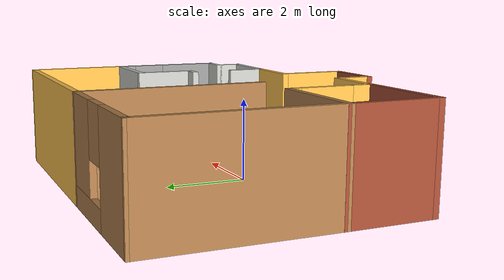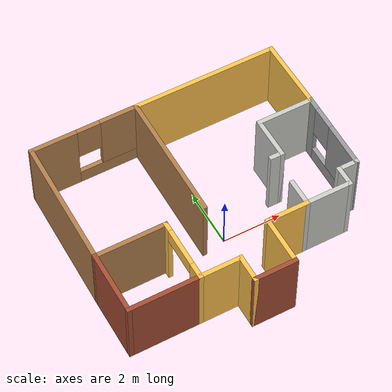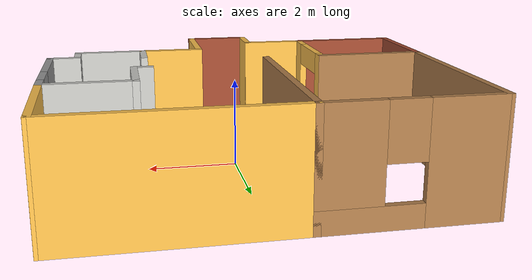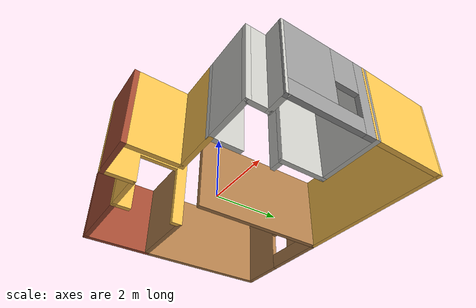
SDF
<?xml version='1.0'?>
<sdf version='1.6'>
  <model name='new_world'>
    <pose frame=''>-0.143743 0.609384 0 0 -0 0</pose>
    <link name='Wall_0'>
      <pose frame=''>-2.41461 3.64954 0 0 -0 0</pose>
      <visual name='Wall_0_Visual_0'>
        <pose frame=''>-1.07287 0 1.25 0 -0 0</pose>
        <geometry>
          <box>
            <size>1.60426 0.15 2.5</size>
          </box>
        </geometry>
        <material>
          <script>
            <uri>file://media/materials/scripts/gazebo.material</uri>
            <name>Gazebo/Wood</name>
          </script>
          <ambient>1 1 1 1</ambient>
        </material>
        <meta>
          <layer>0</layer>
        </meta>
      </visual>
      <collision name='Wall_0_Collision_0'>
        <geometry>
          <box>
            <size>1.60426 0.15 2.5</size>
          </box>
        </geometry>
        <pose frame=''>-1.07287 0 1.25 0 -0 0</pose>
      </collision>
      <visual name='Wall_0_Visual_1'>
        <pose frame=''>0.802129 0 0.25 0 -0 0</pose>
        <geometry>
          <box>
            <size>2.14574 0.15 0.5</size>
          </box>
        </geometry>
        <material>
          <script>
            <uri>file://media/materials/scripts/gazebo.material</uri>
            <name>Gazebo/Wood</name>
          </script>
          <ambient>1 1 1 1</ambient>
        </material>
        <meta>
          <layer>0</layer>
        </meta>
      </visual>
      <collision name='Wall_0_Collision_1'>
        <geometry>
          <box>
            <size>2.14574 0.15 0.5</size>
          </box>
        </geometry>
        <pose frame=''>0.802129 0 0.25 0 -0 0</pose>
      </collision>
      <visual name='Wall_0_Visual_2'>
        <pose frame=''>1.20213 0 1.5 0 -0 0</pose>
        <geometry>
          <box>
            <size>1.34574 0.15 2</size>
          </box>
        </geometry>
        <material>
          <script>
            <uri>file://media/materials/scripts/gazebo.material</uri>
            <name>Gazebo/Wood</name>
          </script>
          <ambient>1 1 1 1</ambient>
        </material>
        <meta>
          <layer>0</layer>
        </meta>
      </visual>
      <collision name='Wall_0_Collision_2'>
        <geometry>
          <box>
            <size>1.34574 0.15 2</size>
          </box>
        </geometry>
        <pose frame=''>1.20213 0 1.5 0 -0 0</pose>
      </collision>
      <visual name='Wall_0_Visual_3'>
        <pose frame=''>0.129259 0 1.9 0 -0 0</pose>
        <geometry>
          <box>
            <size>0.8 0.15 1.2</size>
          </box>
        </geometry>
        <material>
          <script>
            <uri>file://media/materials/scripts/gazebo.material</uri>
            <name>Gazebo/Wood</name>
          </script>
          <ambient>1 1 1 1</ambient>
        </material>
        <meta>
          <layer>0</layer>
        </meta>
      </visual>
      <collision name='Wall_0_Collision_3'>
        <geometry>
          <box>
            <size>0.8 0.15 1.2</size>
          </box>
        </geometry>
        <pose frame=''>0.129259 0 1.9 0 -0 0</pose>
      </collision>
    </link>
    <link name='Wall_1'>
      <collision name='Wall_1_Collision'>
        <geometry>
          <box>
            <size>5 0.15 2.5</size>
          </box>
        </geometry>
        <pose frame=''>0 0 1.25 0 -0 0</pose>
      </collision>
      <visual name='Wall_1_Visual'>
        <pose frame=''>0 0 1.25 0 -0 0</pose>
        <geometry>
          <box>
            <size>5 0.15 2.5</size>
          </box>
        </geometry>
        <material>
          <script>
            <uri>file://media/materials/scripts/gazebo.material</uri>
            <name>Gazebo/Grey</name>
          </script>
          <ambient>1 0.764706 0.305882 1</ambient>
        </material>
        <meta>
          <layer>0</layer>
        </meta>
      </visual>
      <pose frame=''>1.81039 3.64954 0 0 -0 0</pose>
    </link>
    <link name='Wall_10'>
      <collision name='Wall_10_Collision'>
        <geometry>
          <box>
            <size>2.5 0.15 2.5</size>
          </box>
        </geometry>
        <pose frame=''>0 0 1.25 0 -0 0</pose>
      </collision>
      <visual name='Wall_10_Visual'>
        <pose frame=''>0 0 1.25 0 -0 0</pose>
        <geometry>
          <box>
            <size>2.5 0.15 2.5</size>
          </box>
        </geometry>
        <material>
          <script>
            <uri>file://media/materials/scripts/gazebo.material</uri>
            <name>Gazebo/Bricks</name>
          </script>
          <ambient>1 1 1 1</ambient>
        </material>
        <meta>
          <layer>0</layer>
        </meta>
      </visual>
      <pose frame=''>-3.08961 -2.80045 0 0 -0 3.14159</pose>
    </link>
    <link name='Wall_11'>
      <collision name='Wall_11_Collision'>
        <geometry>
          <box>
            <size>2.25 0.15 2.5</size>
          </box>
        </geometry>
        <pose frame=''>0 0 1.25 0 -0 0</pose>
      </collision>
      <visual name='Wall_11_Visual'>
        <pose frame=''>0 0 1.25 0 -0 0</pose>
        <geometry>
          <box>
            <size>2.25 0.15 2.5</size>
          </box>
        </geometry>
        <material>
          <script>
            <uri>file://media/materials/scripts/gazebo.material</uri>
            <name>Gazebo/Bricks</name>
          </script>
          <ambient>1 1 1 1</ambient>
        </material>
        <meta>
          <layer>0</layer>
        </meta>
      </visual>
      <pose frame=''>-4.26461 -1.75046 0 0 -0 1.5708</pose>
    </link>
    <link name='Wall_12'>
      <collision name='Wall_12_Collision'>
        <geometry>
          <box>
            <size>4.50029 0.15 2.5</size>
          </box>
        </geometry>
        <pose frame=''>0 0 1.25 0 -0 0</pose>
      </collision>
      <visual name='Wall_12_Visual'>
        <pose frame=''>0 0 1.25 0 -0 0</pose>
        <geometry>
          <box>
            <size>4.50029 0.15 2.5</size>
          </box>
        </geometry>
        <material>
          <script>
            <uri>file://media/materials/scripts/gazebo.material</uri>
            <name>Gazebo/Wood</name>
          </script>
          <ambient>1 1 1 1</ambient>
        </material>
        <meta>
          <layer>0</layer>
        </meta>
      </visual>
      <pose frame=''>-4.23961 1.47454 0 0 -0 1.5593</pose>
    </link>
    <link name='Wall_15'>
      <collision name='Wall_15_Collision'>
        <geometry>
          <box>
            <size>2.5 0.15 2.5</size>
          </box>
        </geometry>
        <pose frame=''>0 0 1.25 0 -0 0</pose>
      </collision>
      <visual name='Wall_15_Visual'>
        <pose frame=''>0 0 1.25 0 -0 0</pose>
        <geometry>
          <box>
            <size>2.5 0.15 2.5</size>
          </box>
        </geometry>
        <material>
          <script>
            <uri>file://media/materials/scripts/gazebo.material</uri>
            <name>Gazebo/Wood</name>
          </script>
          <ambient>1 1 1 1</ambient>
        </material>
        <meta>
          <layer>0</layer>
        </meta>
      </visual>
      <pose frame=''>-3.08961 -0.700455 0 0 -0 0</pose>
    </link>
    <link name='Wall_17'>
      <collision name='Wall_17_Collision'>
        <geometry>
          <box>
            <size>4.5 0.15 2.5</size>
          </box>
        </geometry>
        <pose frame=''>0 0 1.25 0 -0 0</pose>
      </collision>
      <visual name='Wall_17_Visual'>
        <pose frame=''>0 0 1.25 0 -0 0</pose>
        <geometry>
          <box>
            <size>4.5 0.15 2.5</size>
          </box>
        </geometry>
        <material>
          <script>
            <uri>file://media/materials/scripts/gazebo.material</uri>
            <name>Gazebo/Wood</name>
          </script>
          <ambient>1 1 1 1</ambient>
        </material>
        <meta>
          <layer>0</layer>
        </meta>
      </visual>
      <pose frame=''>-0.614608 1.47454 0 0 -0 -1.5708</pose>
    </link>
    <link name='Wall_19'>
      <pose frame=''>-1.91461 -1.75046 0 0 -0 -1.5708</pose>
      <visual name='Wall_19_Visual_0'>
        <pose frame=''>-0.952313 0 1.25 0 -0 0</pose>
        <geometry>
          <box>
            <size>0.345374 0.15 2.5</size>
          </box>
        </geometry>
        <material>
          <script>
            <uri>file://media/materials/scripts/gazebo.material</uri>
            <name>Gazebo/Grey</name>
          </script>
          <ambient>1 0.764706 0.305882 1</ambient>
        </material>
        <meta>
          <layer>0</layer>
        </meta>
      </visual>
      <collision name='Wall_19_Collision_0'>
        <geometry>
          <box>
            <size>0.345374 0.15 2.5</size>
          </box>
        </geometry>
        <pose frame=''>-0.952313 0 1.25 0 -0 0</pose>
      </collision>
      <visual name='Wall_19_Visual_1'>
        <pose frame=''>0.833759 0 1.25 0 -0 0</pose>
        <geometry>
          <box>
            <size>0.582481 0.15 2.5</size>
          </box>
        </geometry>
        <material>
          <script>
            <uri>file://media/materials/scripts/gazebo.material</uri>
            <name>Gazebo/Grey</name>
          </script>
          <ambient>1 0.764706 0.305882 1</ambient>
        </material>
        <meta>
          <layer>0</layer>
        </meta>
      </visual>
      <collision name='Wall_19_Collision_1'>
        <geometry>
          <box>
            <size>0.582481 0.15 2.5</size>
          </box>
        </geometry>
        <pose frame=''>0.833759 0 1.25 0 -0 0</pose>
      </collision>
      <visual name='Wall_19_Visual_2'>
        <pose frame=''>-0.118554 0 2.25 0 -0 0</pose>
        <geometry>
          <box>
            <size>1.32214 0.15 0.5</size>
          </box>
        </geometry>
        <material>
          <script>
            <uri>file://media/materials/scripts/gazebo.material</uri>
            <name>Gazebo/Grey</name>
          </script>
          <ambient>1 0.764706 0.305882 1</ambient>
        </material>
        <meta>
          <layer>0</layer>
        </meta>
      </visual>
      <collision name='Wall_19_Collision_2'>
        <geometry>
          <box>
            <size>1.32214 0.15 0.5</size>
          </box>
        </geometry>
        <pose frame=''>-0.118554 0 2.25 0 -0 0</pose>
      </collision>
    </link>
    <link name='Wall_21'>
      <collision name='Wall_21_Collision'>
        <geometry>
          <box>
            <size>1.5 0.15 2.5</size>
          </box>
        </geometry>
        <pose frame=''>0 0 1.25 0 -0 0</pose>
      </collision>
      <visual name='Wall_21_Visual'>
        <pose frame=''>0 0 1.25 0 -0 0</pose>
        <geometry>
          <box>
            <size>1.5 0.15 2.5</size>
          </box>
        </geometry>
        <material>
          <script>
            <uri>file://media/materials/scripts/gazebo.material</uri>
            <name>Gazebo/Grey</name>
          </script>
          <ambient>1 0.764706 0.305882 1</ambient>
        </material>
        <meta>
          <layer>0</layer>
        </meta>
      </visual>
      <pose frame=''>1.46039 -2.05045 0 0 -0 0</pose>
    </link>
    <link name='Wall_22'>
      <collision name='Wall_22_Collision'>
        <geometry>
          <box>
            <size>1.65 0.15 2.5</size>
          </box>
        </geometry>
        <pose frame=''>0 0 1.25 0 -0 0</pose>
      </collision>
      <visual name='Wall_22_Visual'>
        <pose frame=''>0 0 1.25 0 -0 0</pose>
        <geometry>
          <box>
            <size>1.65 0.15 2.5</size>
          </box>
        </geometry>
        <material>
          <script>
            <uri>file://media/materials/scripts/gazebo.material</uri>
            <name>Gazebo/CeilingTiled</name>
          </script>
          <ambient>1 1 1 1</ambient>
        </material>
        <meta>
          <layer>0</layer>
        </meta>
      </visual>
      <pose frame=''>2.88539 -2.05045 0 0 -0 0</pose>
    </link>
    <link name='Wall_24'>
      <collision name='Wall_24_Collision'>
        <geometry>
          <box>
            <size>1 0.15 2.5</size>
          </box>
        </geometry>
        <pose frame=''>0 0 1.25 0 -0 0</pose>
      </collision>
      <visual name='Wall_24_Visual'>
        <pose frame=''>0 0 1.25 0 -0 0</pose>
        <geometry>
          <box>
            <size>1 0.15 2.5</size>
          </box>
        </geometry>
        <material>
          <script>
            <uri>file://media/materials/scripts/gazebo.material</uri>
            <name>Gazebo/CeilingTiled</name>
          </script>
          <ambient>1 1 1 1</ambient>
        </material>
        <meta>
          <layer>0</layer>
        </meta>
      </visual>
      <pose frame=''>2.13539 -1.62546 0 0 -0 1.5708</pose>
    </link>
    <link name='Wall_28'>
      <collision name='Wall_28_Collision'>
        <geometry>
          <box>
            <size>0.5 0.15 2.5</size>
          </box>
        </geometry>
        <pose frame=''>0 0 1.25 0 -0 0</pose>
      </collision>
      <visual name='Wall_28_Visual'>
        <pose frame=''>0 0 1.25 0 -0 0</pose>
        <geometry>
          <box>
            <size>0.5 0.15 2.5</size>
          </box>
        </geometry>
        <material>
          <script>
            <uri>file://media/materials/scripts/gazebo.material</uri>
            <name>Gazebo/CeilingTiled</name>
          </script>
          <ambient>1 1 1 1</ambient>
        </material>
        <meta>
          <layer>0</layer>
        </meta>
      </visual>
      <pose frame=''>2.23956 -0.091427 0 0 -0 0</pose>
    </link>
    <link name='Wall_29'>
      <collision name='Wall_29_Collision'>
        <geometry>
          <box>
            <size>1.5 0.15 2.5</size>
          </box>
        </geometry>
        <pose frame=''>0 0 1.25 0 -0 0</pose>
      </collision>
      <visual name='Wall_29_Visual'>
        <pose frame=''>0 0 1.25 0 -0 0</pose>
        <geometry>
          <box>
            <size>1.5 0.15 2.5</size>
          </box>
        </geometry>
        <material>
          <script>
            <uri>file://media/materials/scripts/gazebo.material</uri>
            <name>Gazebo/CeilingTiled</name>
          </script>
          <ambient>1 1 1 1</ambient>
        </material>
        <meta>
          <layer>0</layer>
        </meta>
      </visual>
      <pose frame=''>2.41456 0.583573 0 0 -0 1.5708</pose>
    </link>
    <link name='Wall_3'>
      <collision name='Wall_3_Collision'>
        <geometry>
          <box>
            <size>0.75 0.15 2.5</size>
          </box>
        </geometry>
        <pose frame=''>0 0 1.25 0 -0 0</pose>
      </collision>
      <visual name='Wall_3_Visual'>
        <pose frame=''>0 0 1.25 0 -0 0</pose>
        <geometry>
          <box>
            <size>0.75 0.15 2.5</size>
          </box>
        </geometry>
        <material>
          <script>
            <uri>file://media/materials/scripts/gazebo.material</uri>
            <name>Gazebo/CeilingTiled</name>
          </script>
          <ambient>1 1 1 1</ambient>
        </material>
        <meta>
          <layer>0</layer>
        </meta>
      </visual>
      <pose frame=''>3.93539 -1.45045 0 0 -0 3.14159</pose>
    </link>
    <link name='Wall_35'>
      <collision name='Wall_35_Collision'>
        <geometry>
          <box>
            <size>2 0.15 2.5</size>
          </box>
        </geometry>
        <pose frame=''>0 0 1.25 0 -0 0</pose>
      </collision>
      <visual name='Wall_35_Visual'>
        <pose frame=''>0 0 1.25 0 -0 0</pose>
        <geometry>
          <box>
            <size>2 0.15 2.5</size>
          </box>
        </geometry>
        <material>
          <script>
            <uri>file://media/materials/scripts/gazebo.material</uri>
            <name>Gazebo/CeilingTiled</name>
          </script>
          <ambient>1 1 1 1</ambient>
        </material>
        <meta>
          <layer>0</layer>
        </meta>
      </visual>
      <pose frame=''>3.33956 1.25857 0 0 -0 0</pose>
    </link>
    <link name='Wall_37'>
      <collision name='Wall_37_Collision'>
        <geometry>
          <box>
            <size>2.54115 0.15 2.5</size>
          </box>
        </geometry>
        <pose frame=''>0 0 1.25 0 -0 0</pose>
      </collision>
      <visual name='Wall_37_Visual'>
        <pose frame=''>0 0 1.25 0 -0 0</pose>
        <geometry>
          <box>
            <size>2.54115 0.15 2.5</size>
          </box>
        </geometry>
        <material>
          <script>
            <uri>file://media/materials/scripts/gazebo.material</uri>
            <name>Gazebo/Grey</name>
          </script>
          <ambient>1 0.764706 0.305882 1</ambient>
        </material>
        <meta>
          <layer>0</layer>
        </meta>
      </visual>
      <pose frame=''>4.24997 2.45406 0 0 -0 -1.5586</pose>
    </link>
    <link name='Wall_38'>
      <pose frame=''>4.24997 -0.095941 0 0 -0 -1.58156</pose>
      <visual name='Wall_38_Visual_0'>
        <pose frame=''>-1.18879 0 1.25 0 -0 0</pose>
        <geometry>
          <box>
            <size>0.481602 0.15 2.5</size>
          </box>
        </geometry>
        <material>
          <script>
            <uri>file://media/materials/scripts/gazebo.material</uri>
            <name>Gazebo/Grey</name>
          </script>
          <ambient>1 1 1 1</ambient>
        </material>
        <meta>
          <layer>0</layer>
        </meta>
      </visual>
      <collision name='Wall_38_Collision_0'>
        <geometry>
          <box>
            <size>0.481602 0.15 2.5</size>
          </box>
        </geometry>
        <pose frame=''>-1.18879 0 1.25 0 -0 0</pose>
      </collision>
      <visual name='Wall_38_Visual_1'>
        <pose frame=''>0.240801 0 0.25 0 -0 0</pose>
        <geometry>
          <box>
            <size>2.37758 0.15 0.5</size>
          </box>
        </geometry>
        <material>
          <script>
            <uri>file://media/materials/scripts/gazebo.material</uri>
            <name>Gazebo/Grey</name>
          </script>
          <ambient>1 1 1 1</ambient>
        </material>
        <meta>
          <layer>0</layer>
        </meta>
      </visual>
      <collision name='Wall_38_Collision_1'>
        <geometry>
          <box>
            <size>2.37758 0.15 0.5</size>
          </box>
        </geometry>
        <pose frame=''>0.240801 0 0.25 0 -0 0</pose>
      </collision>
      <visual name='Wall_38_Visual_2'>
        <pose frame=''>0.640801 0 1.5 0 -0 0</pose>
        <geometry>
          <box>
            <size>1.57758 0.15 2</size>
          </box>
        </geometry>
        <material>
          <script>
            <uri>file://media/materials/scripts/gazebo.material</uri>
            <name>Gazebo/Grey</name>
          </script>
          <ambient>1 1 1 1</ambient>
        </material>
        <meta>
          <layer>0</layer>
        </meta>
      </visual>
      <collision name='Wall_38_Collision_2'>
        <geometry>
          <box>
            <size>1.57758 0.15 2</size>
          </box>
        </geometry>
        <pose frame=''>0.640801 0 1.5 0 -0 0</pose>
      </collision>
      <visual name='Wall_38_Visual_3'>
        <pose frame=''>-0.54799 0 1.9 0 -0 0</pose>
        <geometry>
          <box>
            <size>0.8 0.15 1.2</size>
          </box>
        </geometry>
        <material>
          <script>
            <uri>file://media/materials/scripts/gazebo.material</uri>
            <name>Gazebo/Grey</name>
          </script>
          <ambient>1 1 1 1</ambient>
        </material>
        <meta>
          <layer>0</layer>
        </meta>
      </visual>
      <collision name='Wall_38_Collision_3'>
        <geometry>
          <box>
            <size>0.8 0.15 1.2</size>
          </box>
        </geometry>
        <pose frame=''>-0.54799 0 1.9 0 -0 0</pose>
      </collision>
    </link>
    <link name='Wall_4'>
      <collision name='Wall_4_Collision'>
        <geometry>
          <box>
            <size>0.75 0.15 2.5</size>
          </box>
        </geometry>
        <pose frame=''>0 0 1.25 0 -0 0</pose>
      </collision>
      <visual name='Wall_4_Visual'>
        <pose frame=''>0 0 1.25 0 -0 0</pose>
        <geometry>
          <box>
            <size>0.75 0.15 2.5</size>
          </box>
        </geometry>
        <material>
          <script>
            <uri>file://media/materials/scripts/gazebo.material</uri>
            <name>Gazebo/CeilingTiled</name>
          </script>
          <ambient>1 1 1 1</ambient>
        </material>
        <meta>
          <layer>0</layer>
        </meta>
      </visual>
      <pose frame=''>3.63539 -1.75046 0 0 -0 -1.5708</pose>
    </link>
    <link name='Wall_6'>
      <collision name='Wall_6_Collision'>
        <geometry>
          <box>
            <size>1.75 0.15 2.5</size>
          </box>
        </geometry>
        <pose frame=''>0 0 1.25 0 -0 0</pose>
      </collision>
      <visual name='Wall_6_Visual'>
        <pose frame=''>0 0 1.25 0 -0 0</pose>
        <geometry>
          <box>
            <size>1.75 0.15 2.5</size>
          </box>
        </geometry>
        <material>
          <script>
            <uri>file://media/materials/scripts/gazebo.material</uri>
            <name>Gazebo/Grey</name>
          </script>
          <ambient>1 0.764706 0.305882 1</ambient>
        </material>
        <meta>
          <layer>0</layer>
        </meta>
      </visual>
      <pose frame=''>0.785392 -2.85046 0 0 -0 -1.5708</pose>
    </link>
    <link name='Wall_7'>
      <collision name='Wall_7_Collision'>
        <geometry>
          <box>
            <size>1.5 0.15 2.5</size>
          </box>
        </geometry>
        <pose frame=''>0 0 1.25 0 -0 0</pose>
      </collision>
      <visual name='Wall_7_Visual'>
        <pose frame=''>0 0 1.25 0 -0 0</pose>
        <geometry>
          <box>
            <size>1.5 0.15 2.5</size>
          </box>
        </geometry>
        <material>
          <script>
            <uri>file://media/materials/scripts/gazebo.material</uri>
            <name>Gazebo/Bricks</name>
          </script>
          <ambient>1 1 1 1</ambient>
        </material>
        <meta>
          <layer>0</layer>
        </meta>
      </visual>
      <pose frame=''>0.110392 -3.65046 0 0 -0 3.14159</pose>
    </link>
    <link name='Wall_8'>
      <collision name='Wall_8_Collision'>
        <geometry>
          <box>
            <size>1 0.15 2.5</size>
          </box>
        </geometry>
        <pose frame=''>0 0 1.25 0 -0 0</pose>
      </collision>
      <visual name='Wall_8_Visual'>
        <pose frame=''>0 0 1.25 0 -0 0</pose>
        <geometry>
          <box>
            <size>1 0.15 2.5</size>
          </box>
        </geometry>
        <material>
          <script>
            <uri>file://media/materials/scripts/gazebo.material</uri>
            <name>Gazebo/Grey</name>
          </script>
          <ambient>1 0.764706 0.305882 1</ambient>
        </material>
        <meta>
          <layer>0</layer>
        </meta>
      </visual>
      <pose frame=''>-0.564608 -3.22546 0 0 -0 1.5708</pose>
    </link>
    <link name='Wall_9'>
      <collision name='Wall_9_Collision'>
        <geometry>
          <box>
            <size>1.5 0.15 2.5</size>
          </box>
        </geometry>
        <pose frame=''>0 0 1.25 0 -0 0</pose>
      </collision>
      <visual name='Wall_9_Visual'>
        <pose frame=''>0 0 1.25 0 -0 0</pose>
        <geometry>
          <box>
            <size>1.5 0.15 2.5</size>
          </box>
        </geometry>
        <material>
          <script>
            <uri>file://media/materials/scripts/gazebo.material</uri>
            <name>Gazebo/Grey</name>
          </script>
          <ambient>1 0.764706 0.305882 1</ambient>
        </material>
        <meta>
          <layer>0</layer>
        </meta>
      </visual>
      <pose frame=''>-1.23961 -2.80045 0 0 -0 3.14159</pose>
    </link>
    <static>1</static>
  </model>
</sdf>
